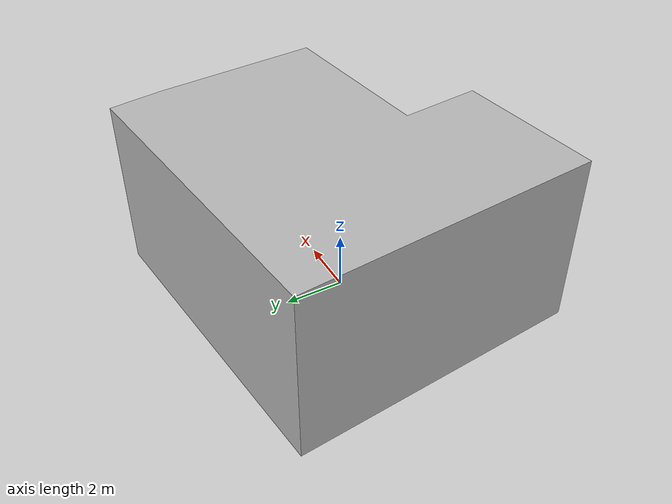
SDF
<?xml version="1.0" ?>
<sdf version="1.7">
  <model name="building_7129_assumed_a_estacao_em_caminho_de_ferro">
    <static>true</static>
    <link name="building_link">
      <visual name="building_visual">
        <geometry>
          <mesh>
            <uri>model://building_7129_assumed_a_estacao_em_caminho_de_ferro/meshes/construction_7129_assumed_A_Estacao_em_caminho_de_ferro_h6m.obj</uri>
          </mesh>
        </geometry>
      </visual>
    <collision name="building_collision">
      <geometry>
        <mesh>
          <uri>model://building_7129_assumed_a_estacao_em_caminho_de_ferro/meshes/construction_7129_assumed_A_Estacao_em_caminho_de_ferro_h6m.obj</uri>
        </mesh>
      </geometry>
    </collision>
    </link>
  </model>
</sdf>
